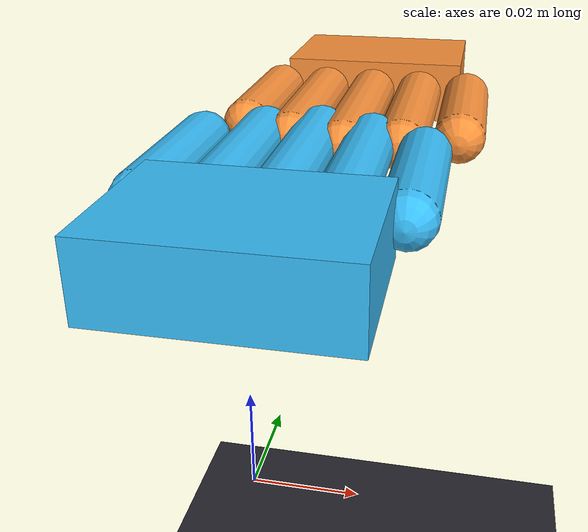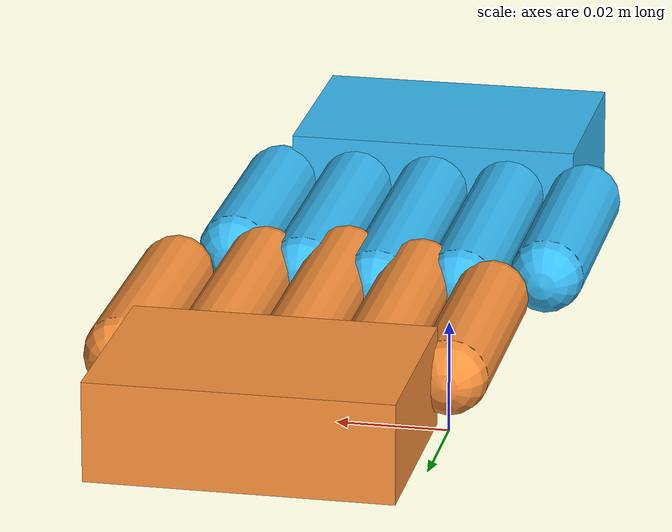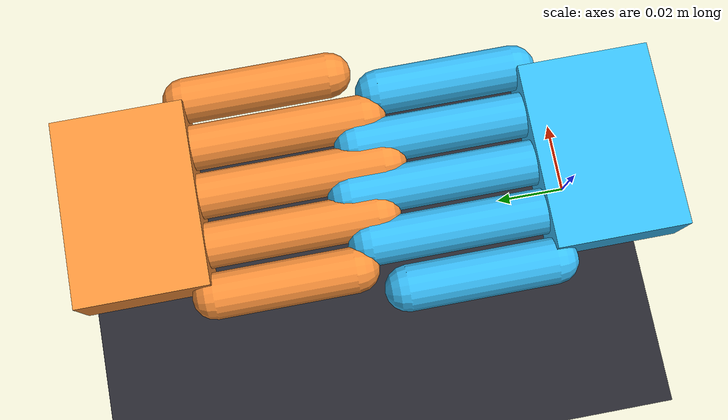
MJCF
<mujoco model="amazinghand_5finger_docking">
  <compiler angle="radian" />
  <option gravity="0 0 -9.81" timestep="0.002" />

  <default>
    <geom density="600" friction="1.0 0.02 0.001" solref="0.01 1" solimp="0.9 0.95 0.001" />
    <joint damping="0.15" frictionloss="0.01" />
  </default>

  <worldbody>
    <light name="light_top" pos="0 0 1.2" dir="0 0 -1" diffuse="0.8 0.8 0.8" directional="true" />
    <light name="light_side" pos="0.8 -0.6 0.6" dir="-0.8 0.6 -0.4" diffuse="0.5 0.5 0.5" directional="true" />
    <camera name="cam_dock" mode="fixed" pos="0.55 -0.55 0.35" xyaxes="0.707 0.707 0 -0.25 0.25 0.935" />

    <geom name="floor" type="plane" size="1 1 0.01" pos="0 0 -0.15" rgba="0.15 0.15 0.18 1" contype="0" conaffinity="0" />

    <body name="handA_wrist" pos="0 0 0.05">
      <joint name="handA_approach" type="slide" axis="0 1 0" damping="1.0" />
      <inertial pos="0 0 0" mass="0.35" diaginertia="0.0006 0.0006 0.0006" />
      <geom name="handA_palm" type="box" size="0.024 0.017 0.008" rgba="0.22 0.74 0.97 1" />

      <body name="handA_finger_thumb" pos="-0.026 0.017 0">
        <joint name="handA_thumb_curl" type="hinge" axis="1 0 0" range="0 2.0" />
        <geom name="handA_thumb_geom" type="capsule" fromto="0 0 0 0 0.038 0" size="0.006" margin="0.006" gap="0.006" rgba="0.22 0.74 0.97 1" />
      </body>
      <body name="handA_finger_index" pos="-0.013 0.017 0">
        <joint name="handA_index_curl" type="hinge" axis="1 0 0" range="0 2.1" />
        <geom name="handA_index_geom" type="capsule" fromto="0 0 0 0 0.045 0" size="0.006" margin="0.006" gap="0.006" rgba="0.22 0.74 0.97 1" />
      </body>
      <body name="handA_finger_middle" pos="0 0.017 0">
        <joint name="handA_middle_curl" type="hinge" axis="1 0 0" range="0 2.1" />
        <geom name="handA_middle_geom" type="capsule" fromto="0 0 0 0 0.048 0" size="0.006" margin="0.006" gap="0.006" rgba="0.22 0.74 0.97 1" />
      </body>
      <body name="handA_finger_ring" pos="0.013 0.017 0">
        <joint name="handA_ring_curl" type="hinge" axis="1 0 0" range="0 2.1" />
        <geom name="handA_ring_geom" type="capsule" fromto="0 0 0 0 0.044 0" size="0.006" margin="0.006" gap="0.006" rgba="0.22 0.74 0.97 1" />
      </body>
      <body name="handA_finger_pinky" pos="0.026 0.017 0">
        <joint name="handA_pinky_curl" type="hinge" axis="1 0 0" range="0 2.0" />
        <geom name="handA_pinky_geom" type="capsule" fromto="0 0 0 0 0.036 0" size="0.006" margin="0.006" gap="0.006" rgba="0.22 0.74 0.97 1" />
      </body>
    </body>

    <body name="handB_wrist" pos="0.007 0.12 0.05" euler="0 0 3.14159">
      <joint name="handB_approach" type="slide" axis="0 1 0" damping="1.0" />
      <inertial pos="0 0 0" mass="0.35" diaginertia="0.0006 0.0006 0.0006" />
      <geom name="handB_palm" type="box" size="0.024 0.017 0.008" rgba="0.98 0.57 0.23 1" />

      <body name="handB_finger_thumb" pos="-0.026 0.017 0">
        <joint name="handB_thumb_curl" type="hinge" axis="1 0 0" range="0 2.0" />
        <geom name="handB_thumb_geom" type="capsule" fromto="0 0 0 0 0.038 0" size="0.006" margin="0.006" gap="0.006" rgba="0.98 0.57 0.23 1" />
      </body>
      <body name="handB_finger_index" pos="-0.013 0.017 0">
        <joint name="handB_index_curl" type="hinge" axis="1 0 0" range="0 2.1" />
        <geom name="handB_index_geom" type="capsule" fromto="0 0 0 0 0.045 0" size="0.006" margin="0.006" gap="0.006" rgba="0.98 0.57 0.23 1" />
      </body>
      <body name="handB_finger_middle" pos="0 0.017 0">
        <joint name="handB_middle_curl" type="hinge" axis="1 0 0" range="0 2.1" />
        <geom name="handB_middle_geom" type="capsule" fromto="0 0 0 0 0.048 0" size="0.006" margin="0.006" gap="0.006" rgba="0.98 0.57 0.23 1" />
      </body>
      <body name="handB_finger_ring" pos="0.013 0.017 0">
        <joint name="handB_ring_curl" type="hinge" axis="1 0 0" range="0 2.1" />
        <geom name="handB_ring_geom" type="capsule" fromto="0 0 0 0 0.044 0" size="0.006" margin="0.006" gap="0.006" rgba="0.98 0.57 0.23 1" />
      </body>
      <body name="handB_finger_pinky" pos="0.026 0.017 0">
        <joint name="handB_pinky_curl" type="hinge" axis="1 0 0" range="0 2.0" />
        <geom name="handB_pinky_geom" type="capsule" fromto="0 0 0 0 0.036 0" size="0.006" margin="0.006" gap="0.006" rgba="0.98 0.57 0.23 1" />
      </body>
    </body>
  </worldbody>

  <actuator>
    <general name="handA_approach_ctrl" joint="handA_approach" ctrllimited="true" ctrlrange="-5 5" />
    <general name="handA_thumb_ctrl" joint="handA_thumb_curl" ctrllimited="true" ctrlrange="-2 2" />
    <general name="handA_index_ctrl" joint="handA_index_curl" ctrllimited="true" ctrlrange="-2 2" />
    <general name="handA_middle_ctrl" joint="handA_middle_curl" ctrllimited="true" ctrlrange="-2 2" />
    <general name="handA_ring_ctrl" joint="handA_ring_curl" ctrllimited="true" ctrlrange="-2 2" />
    <general name="handA_pinky_ctrl" joint="handA_pinky_curl" ctrllimited="true" ctrlrange="-2 2" />
    <general name="handB_approach_ctrl" joint="handB_approach" ctrllimited="true" ctrlrange="-5 5" />
    <general name="handB_thumb_ctrl" joint="handB_thumb_curl" ctrllimited="true" ctrlrange="-2 2" />
    <general name="handB_index_ctrl" joint="handB_index_curl" ctrllimited="true" ctrlrange="-2 2" />
    <general name="handB_middle_ctrl" joint="handB_middle_curl" ctrllimited="true" ctrlrange="-2 2" />
    <general name="handB_ring_ctrl" joint="handB_ring_curl" ctrllimited="true" ctrlrange="-2 2" />
    <general name="handB_pinky_ctrl" joint="handB_pinky_curl" ctrllimited="true" ctrlrange="-2 2" />
  </actuator>
</mujoco>
